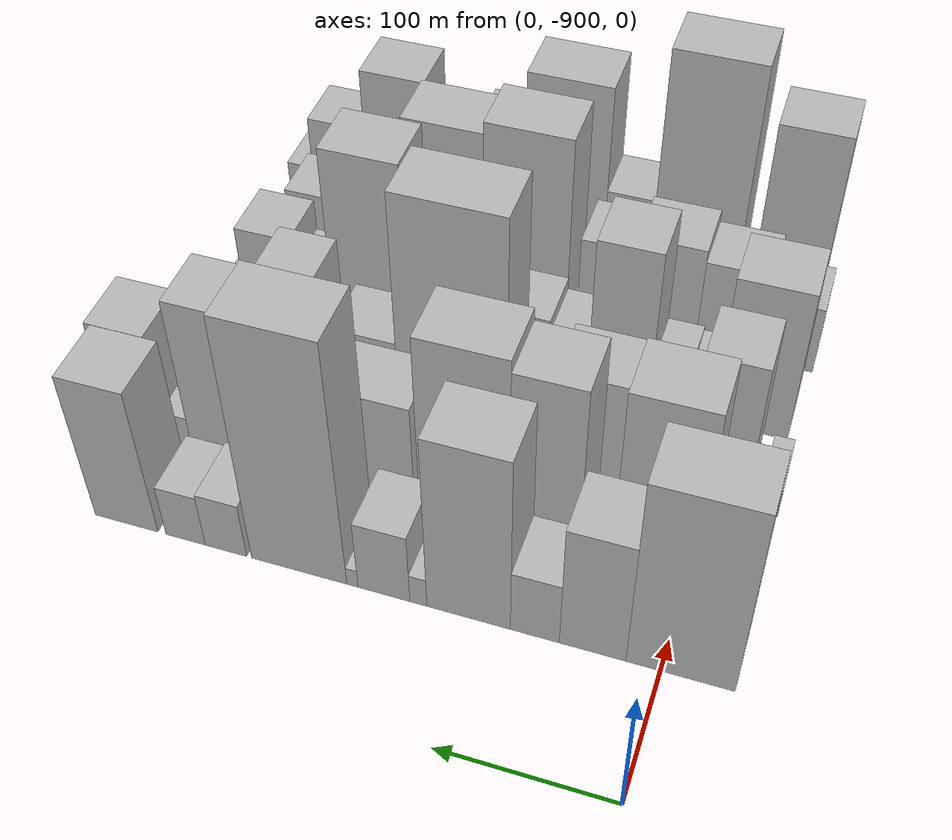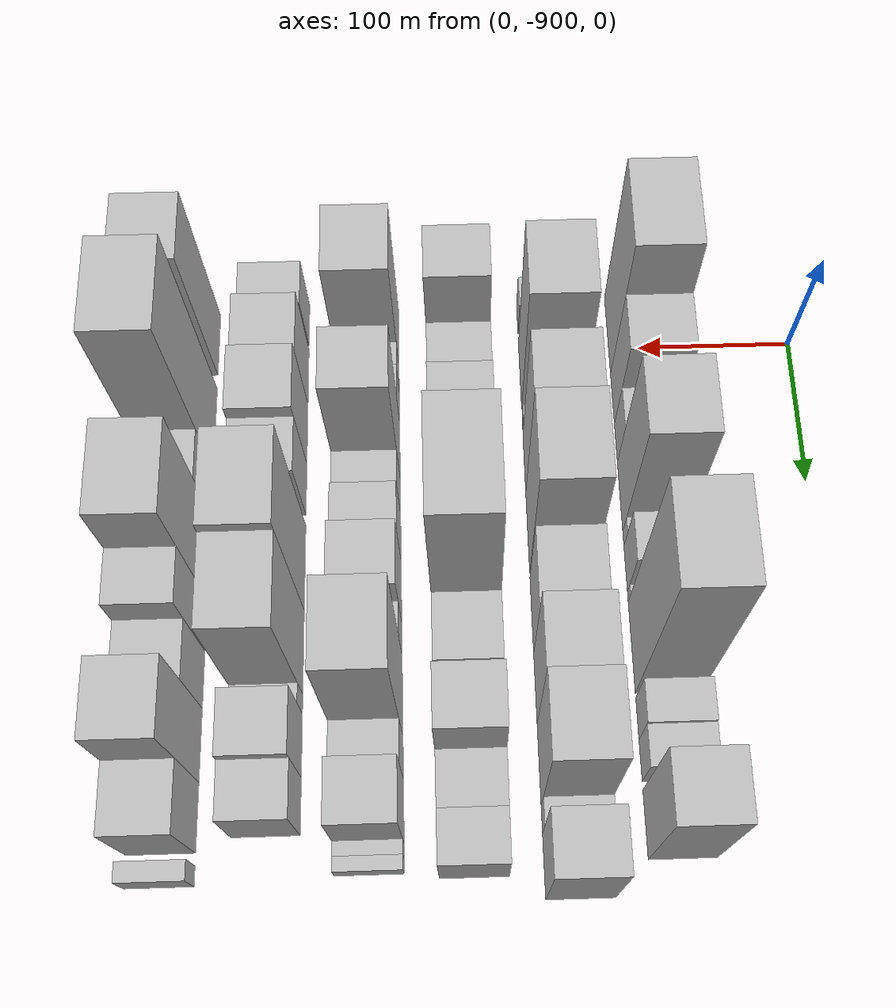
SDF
<sdf version="1.6">
 <world name="default">
  <model name="building_1">
   <static>1</static>
   <pose>100.0000 -910.4842 0 0.000000 0.000000 0.000000</pose>
   <link name="link">
    <pose>0 0 75.00 0 0 0</pose>
    <collision name="collision"><geometry><box><size>40.0000 59.0317 150.0000</size></box></geometry></collision>
    <visual name="visual">
     <cast_shadows>0</cast_shadows>
     <geometry><box><size>40.0000 59.0317 150.0000</size></box></geometry>
     <material>
      <script>
       <uri>model://HANNAS_wall/materials/scripts</uri>
       <uri>model://HANNAS_wall/materials/textures</uri>
       <name>vrc/HANNAS_wall</name>
      </script>
     </material>
    </visual>
   </link>
  </model>
  <model name="building_2">
   <static>1</static>
   <pose>100.0000 -862.5990 0 0.000000 0.000000 0.000000</pose>
   <link name="link">
    <pose>0 0 49.50 0 0 0</pose>
    <collision name="collision"><geometry><box><size>40.0000 36.7386 99.0000</size></box></geometry></collision>
    <visual name="visual">
     <cast_shadows>0</cast_shadows>
     <geometry><box><size>40.0000 36.7386 99.0000</size></box></geometry>
     <material>
      <script>
       <uri>model://HANNAS_wall/materials/scripts</uri>
       <uri>model://HANNAS_wall/materials/textures</uri>
       <name>vrc/HANNAS_wall</name>
      </script>
     </material>
    </visual>
   </link>
  </model>
  <model name="building_3">
   <static>1</static>
   <pose>100.0000 -830.4726 0 0.000000 0.000000 0.000000</pose>
   <link name="link">
    <pose>0 0 25.50 0 0 0</pose>
    <collision name="collision"><geometry><box><size>40.0000 27.5144 51.0000</size></box></geometry></collision>
    <visual name="visual">
     <cast_shadows>0</cast_shadows>
     <geometry><box><size>40.0000 27.5144 51.0000</size></box></geometry>
     <material>
      <script>
       <uri>model://HANNAS_wall/materials/scripts</uri>
       <uri>model://HANNAS_wall/materials/textures</uri>
       <name>vrc/HANNAS_wall</name>
      </script>
     </material>
    </visual>
   </link>
  </model>
  <model name="building_4">
   <static>1</static>
   <pose>100.0000 -792.7981 0 0.000000 0.000000 0.000000</pose>
   <link name="link">
    <pose>0 0 70.50 0 0 0</pose>
    <collision name="collision"><geometry><box><size>40.0000 47.8345 141.0000</size></box></geometry></collision>
    <visual name="visual">
     <cast_shadows>0</cast_shadows>
     <geometry><box><size>40.0000 47.8345 141.0000</size></box></geometry>
     <material>
      <script>
       <uri>model://HANNAS_wall/materials/scripts</uri>
       <uri>model://HANNAS_wall/materials/textures</uri>
       <name>vrc/HANNAS_wall</name>
      </script>
     </material>
    </visual>
   </link>
  </model>
  <model name="building_5">
   <static>1</static>
   <pose>100.0000 -763.9327 0 0.000000 0.000000 0.000000</pose>
   <link name="link">
    <pose>0 0 12.00 0 0 0</pose>
    <collision name="collision"><geometry><box><size>40.0000 9.8963 24.0000</size></box></geometry></collision>
    <visual name="visual">
     <cast_shadows>0</cast_shadows>
     <geometry><box><size>40.0000 9.8963 24.0000</size></box></geometry>
     <material>
      <script>
       <uri>model://HANNAS_wall/materials/scripts</uri>
       <uri>model://HANNAS_wall/materials/textures</uri>
       <name>vrc/HANNAS_wall</name>
      </script>
     </material>
    </visual>
   </link>
  </model>
  <model name="building_6">
   <static>1</static>
   <pose>100.0000 -743.7237 0 0.000000 0.000000 0.000000</pose>
   <link name="link">
    <pose>0 0 28.50 0 0 0</pose>
    <collision name="collision"><geometry><box><size>40.0000 30.5218 57.0000</size></box></geometry></collision>
    <visual name="visual">
     <cast_shadows>0</cast_shadows>
     <geometry><box><size>40.0000 30.5218 57.0000</size></box></geometry>
     <material>
      <script>
       <uri>model://HANNAS_wall/materials/scripts</uri>
       <uri>model://HANNAS_wall/materials/textures</uri>
       <name>vrc/HANNAS_wall</name>
      </script>
     </material>
    </visual>
   </link>
  </model>
  <model name="building_7">
   <static>1</static>
   <pose>100.0000 -725.1394 0 0.000000 0.000000 0.000000</pose>
   <link name="link">
    <pose>0 0 7.50 0 0 0</pose>
    <collision name="collision"><geometry><box><size>40.0000 6.6468 15.0000</size></box></geometry></collision>
    <visual name="visual">
     <cast_shadows>0</cast_shadows>
     <geometry><box><size>40.0000 6.6468 15.0000</size></box></geometry>
     <material>
      <script>
       <uri>model://HANNAS_wall/materials/scripts</uri>
       <uri>model://HANNAS_wall/materials/textures</uri>
       <name>vrc/HANNAS_wall</name>
      </script>
     </material>
    </visual>
   </link>
  </model>
  <model name="building_8">
   <static>1</static>
   <pose>100.0000 -693.0077 0 0.000000 0.000000 0.000000</pose>
   <link name="link">
    <pose>0 0 96.00 0 0 0</pose>
    <collision name="collision"><geometry><box><size>40.0000 57.6166 192.0000</size></box></geometry></collision>
    <visual name="visual">
     <cast_shadows>0</cast_shadows>
     <geometry><box><size>40.0000 57.6166 192.0000</size></box></geometry>
     <material>
      <script>
       <uri>model://HANNAS_wall/materials/scripts</uri>
       <uri>model://HANNAS_wall/materials/textures</uri>
       <name>vrc/HANNAS_wall</name>
      </script>
     </material>
    </visual>
   </link>
  </model>
  <model name="building_9">
   <static>1</static>
   <pose>100.0000 -648.4528 0 0.000000 0.000000 0.000000</pose>
   <link name="link">
    <pose>0 0 22.50 0 0 0</pose>
    <collision name="collision"><geometry><box><size>40.0000 25.4932 45.0000</size></box></geometry></collision>
    <visual name="visual">
     <cast_shadows>0</cast_shadows>
     <geometry><box><size>40.0000 25.4932 45.0000</size></box></geometry>
     <material>
      <script>
       <uri>model://HANNAS_wall/materials/scripts</uri>
       <uri>model://HANNAS_wall/materials/textures</uri>
       <name>vrc/HANNAS_wall</name>
      </script>
     </material>
    </visual>
   </link>
  </model>
  <model name="building_10">
   <static>1</static>
   <pose>100.0000 -623.3817 0 0.000000 0.000000 0.000000</pose>
   <link name="link">
    <pose>0 0 21.00 0 0 0</pose>
    <collision name="collision"><geometry><box><size>40.0000 24.6492 42.0000</size></box></geometry></collision>
    <visual name="visual">
     <cast_shadows>0</cast_shadows>
     <geometry><box><size>40.0000 24.6492 42.0000</size></box></geometry>
     <material>
      <script>
       <uri>model://HANNAS_wall/materials/scripts</uri>
       <uri>model://HANNAS_wall/materials/textures</uri>
       <name>vrc/HANNAS_wall</name>
      </script>
     </material>
    </visual>
   </link>
  </model>
  <model name="building_11">
   <static>1</static>
   <pose>100.0000 -586.1193 0 0.000000 0.000000 0.000000</pose>
   <link name="link">
    <pose>0 0 58.50 0 0 0</pose>
    <collision name="collision"><geometry><box><size>40.0000 39.8756 117.0000</size></box></geometry></collision>
    <visual name="visual">
     <cast_shadows>0</cast_shadows>
     <geometry><box><size>40.0000 39.8756 117.0000</size></box></geometry>
     <material>
      <script>
       <uri>model://HANNAS_wall/materials/scripts</uri>
       <uri>model://HANNAS_wall/materials/textures</uri>
       <name>vrc/HANNAS_wall</name>
      </script>
     </material>
    </visual>
   </link>
  </model>
  <model name="building_56">
   <static>1</static>
   <pose>160.0000 -924.4124 0 0.000000 0.000000 0.000000</pose>
   <link name="link">
    <pose>0 0 18.00 0 0 0</pose>
    <collision name="collision"><geometry><box><size>40.0000 21.1751 36.0000</size></box></geometry></collision>
    <visual name="visual">
     <cast_shadows>0</cast_shadows>
     <geometry><box><size>40.0000 21.1751 36.0000</size></box></geometry>
     <material>
      <script>
       <uri>model://HANNAS_wall/materials/scripts</uri>
       <uri>model://HANNAS_wall/materials/textures</uri>
       <name>vrc/HANNAS_wall</name>
      </script>
     </material>
    </visual>
   </link>
  </model>
  <model name="building_57">
   <static>1</static>
   <pose>160.0000 -881.5369 0 0.000000 0.000000 0.000000</pose>
   <link name="link">
    <pose>0 0 70.50 0 0 0</pose>
    <collision name="collision"><geometry><box><size>40.0000 48.5760 141.0000</size></box></geometry></collision>
    <visual name="visual">
     <cast_shadows>0</cast_shadows>
     <geometry><box><size>40.0000 48.5760 141.0000</size></box></geometry>
     <material>
      <script>
       <uri>model://HANNAS_wall/materials/scripts</uri>
       <uri>model://HANNAS_wall/materials/textures</uri>
       <name>vrc/HANNAS_wall</name>
      </script>
     </material>
    </visual>
   </link>
  </model>
  <model name="building_58">
   <static>1</static>
   <pose>160.0000 -846.8091 0 0.000000 0.000000 0.000000</pose>
   <link name="link">
    <pose>0 0 9.00 0 0 0</pose>
    <collision name="collision"><geometry><box><size>40.0000 8.8795 18.0000</size></box></geometry></collision>
    <visual name="visual">
     <cast_shadows>0</cast_shadows>
     <geometry><box><size>40.0000 8.8795 18.0000</size></box></geometry>
     <material>
      <script>
       <uri>model://HANNAS_wall/materials/scripts</uri>
       <uri>model://HANNAS_wall/materials/textures</uri>
       <name>vrc/HANNAS_wall</name>
      </script>
     </material>
    </visual>
   </link>
  </model>
  <model name="building_59">
   <static>1</static>
   <pose>160.0000 -817.6788 0 0.000000 0.000000 0.000000</pose>
   <link name="link">
    <pose>0 0 67.50 0 0 0</pose>
    <collision name="collision"><geometry><box><size>40.0000 41.3811 135.0000</size></box></geometry></collision>
    <visual name="visual">
     <cast_shadows>0</cast_shadows>
     <geometry><box><size>40.0000 41.3811 135.0000</size></box></geometry>
     <material>
      <script>
       <uri>model://HANNAS_wall/materials/scripts</uri>
       <uri>model://HANNAS_wall/materials/textures</uri>
       <name>vrc/HANNAS_wall</name>
      </script>
     </material>
    </visual>
   </link>
  </model>
  <model name="building_60">
   <static>1</static>
   <pose>160.0000 -769.9817 0 0.000000 0.000000 0.000000</pose>
   <link name="link">
    <pose>0 0 72.00 0 0 0</pose>
    <collision name="collision"><geometry><box><size>40.0000 54.0131 144.0000</size></box></geometry></collision>
    <visual name="visual">
     <cast_shadows>0</cast_shadows>
     <geometry><box><size>40.0000 54.0131 144.0000</size></box></geometry>
     <material>
      <script>
       <uri>model://HANNAS_wall/materials/scripts</uri>
       <uri>model://HANNAS_wall/materials/textures</uri>
       <name>vrc/HANNAS_wall</name>
      </script>
     </material>
    </visual>
   </link>
  </model>
  <model name="building_61">
   <static>1</static>
   <pose>160.0000 -715.3085 0 0.000000 0.000000 0.000000</pose>
   <link name="link">
    <pose>0 0 43.50 0 0 0</pose>
    <collision name="collision"><geometry><box><size>40.0000 49.3332 87.0000</size></box></geometry></collision>
    <visual name="visual">
     <cast_shadows>0</cast_shadows>
     <geometry><box><size>40.0000 49.3332 87.0000</size></box></geometry>
     <material>
      <script>
       <uri>model://HANNAS_wall/materials/scripts</uri>
       <uri>model://HANNAS_wall/materials/textures</uri>
       <name>vrc/HANNAS_wall</name>
      </script>
     </material>
    </visual>
   </link>
  </model>
  <model name="building_62">
   <static>1</static>
   <pose>160.0000 -668.8599 0 0.000000 0.000000 0.000000</pose>
   <link name="link">
    <pose>0 0 58.50 0 0 0</pose>
    <collision name="collision"><geometry><box><size>40.0000 43.5639 117.0000</size></box></geometry></collision>
    <visual name="visual">
     <cast_shadows>0</cast_shadows>
     <geometry><box><size>40.0000 43.5639 117.0000</size></box></geometry>
     <material>
      <script>
       <uri>model://HANNAS_wall/materials/scripts</uri>
       <uri>model://HANNAS_wall/materials/textures</uri>
       <name>vrc/HANNAS_wall</name>
      </script>
     </material>
    </visual>
   </link>
  </model>
  <model name="building_63">
   <static>1</static>
   <pose>160.0000 -622.9243 0 0.000000 0.000000 0.000000</pose>
   <link name="link">
    <pose>0 0 63.00 0 0 0</pose>
    <collision name="collision"><geometry><box><size>40.0000 48.3073 126.0000</size></box></geometry></collision>
    <visual name="visual">
     <cast_shadows>0</cast_shadows>
     <geometry><box><size>40.0000 48.3073 126.0000</size></box></geometry>
     <material>
      <script>
       <uri>model://HANNAS_wall/materials/scripts</uri>
       <uri>model://HANNAS_wall/materials/textures</uri>
       <name>vrc/HANNAS_wall</name>
      </script>
     </material>
    </visual>
   </link>
  </model>
  <model name="building_64">
   <static>1</static>
   <pose>160.0000 -590.5677 0 0.000000 0.000000 0.000000</pose>
   <link name="link">
    <pose>0 0 15.00 0 0 0</pose>
    <collision name="collision"><geometry><box><size>40.0000 16.4059 30.0000</size></box></geometry></collision>
    <visual name="visual">
     <cast_shadows>0</cast_shadows>
     <geometry><box><size>40.0000 16.4059 30.0000</size></box></geometry>
     <material>
      <script>
       <uri>model://HANNAS_wall/materials/scripts</uri>
       <uri>model://HANNAS_wall/materials/textures</uri>
       <name>vrc/HANNAS_wall</name>
      </script>
     </material>
    </visual>
   </link>
  </model>
  <model name="building_65">
   <static>1</static>
   <pose>160.0000 -564.0312 0 0.000000 0.000000 0.000000</pose>
   <link name="link">
    <pose>0 0 46.50 0 0 0</pose>
    <collision name="collision"><geometry><box><size>40.0000 36.6671 93.0000</size></box></geometry></collision>
    <visual name="visual">
     <cast_shadows>0</cast_shadows>
     <geometry><box><size>40.0000 36.6671 93.0000</size></box></geometry>
     <material>
      <script>
       <uri>model://HANNAS_wall/materials/scripts</uri>
       <uri>model://HANNAS_wall/materials/textures</uri>
       <name>vrc/HANNAS_wall</name>
      </script>
     </material>
    </visual>
   </link>
  </model>
  <model name="building_104">
   <static>1</static>
   <pose>220.0000 -934.0012 0 0.000000 0.000000 0.000000</pose>
   <link name="link">
    <pose>0 0 12.00 0 0 0</pose>
    <collision name="collision"><geometry><box><size>40.0000 11.9976 24.0000</size></box></geometry></collision>
    <visual name="visual">
     <cast_shadows>0</cast_shadows>
     <geometry><box><size>40.0000 11.9976 24.0000</size></box></geometry>
     <material>
      <script>
       <uri>model://HANNAS_wall/materials/scripts</uri>
       <uri>model://HANNAS_wall/materials/textures</uri>
       <name>vrc/HANNAS_wall</name>
      </script>
     </material>
    </visual>
   </link>
  </model>
  <model name="building_105">
   <static>1</static>
   <pose>220.0000 -903.0771 0 0.000000 0.000000 0.000000</pose>
   <link name="link">
    <pose>0 0 58.50 0 0 0</pose>
    <collision name="collision"><geometry><box><size>40.0000 35.8506 117.0000</size></box></geometry></collision>
    <visual name="visual">
     <cast_shadows>0</cast_shadows>
     <geometry><box><size>40.0000 35.8506 117.0000</size></box></geometry>
     <material>
      <script>
       <uri>model://HANNAS_wall/materials/scripts</uri>
       <uri>model://HANNAS_wall/materials/textures</uri>
       <name>vrc/HANNAS_wall</name>
      </script>
     </material>
    </visual>
   </link>
  </model>
  <model name="building_106">
   <static>1</static>
   <pose>220.0000 -868.0719 0 0.000000 0.000000 0.000000</pose>
   <link name="link">
    <pose>0 0 33.00 0 0 0</pose>
    <collision name="collision"><geometry><box><size>40.0000 34.1599 66.0000</size></box></geometry></collision>
    <visual name="visual">
     <cast_shadows>0</cast_shadows>
     <geometry><box><size>40.0000 34.1599 66.0000</size></box></geometry>
     <material>
      <script>
       <uri>model://HANNAS_wall/materials/scripts</uri>
       <uri>model://HANNAS_wall/materials/textures</uri>
       <name>vrc/HANNAS_wall</name>
      </script>
     </material>
    </visual>
   </link>
  </model>
  <model name="building_107">
   <static>1</static>
   <pose>220.0000 -828.1223 0 0.000000 0.000000 0.000000</pose>
   <link name="link">
    <pose>0 0 39.00 0 0 0</pose>
    <collision name="collision"><geometry><box><size>40.0000 45.7391 78.0000</size></box></geometry></collision>
    <visual name="visual">
     <cast_shadows>0</cast_shadows>
     <geometry><box><size>40.0000 45.7391 78.0000</size></box></geometry>
     <material>
      <script>
       <uri>model://HANNAS_wall/materials/scripts</uri>
       <uri>model://HANNAS_wall/materials/textures</uri>
       <name>vrc/HANNAS_wall</name>
      </script>
     </material>
    </visual>
   </link>
  </model>
  <model name="building_108">
   <static>1</static>
   <pose>220.0000 -790.9094 0 0.000000 0.000000 0.000000</pose>
   <link name="link">
    <pose>0 0 25.50 0 0 0</pose>
    <collision name="collision"><geometry><box><size>40.0000 28.6867 51.0000</size></box></geometry></collision>
    <visual name="visual">
     <cast_shadows>0</cast_shadows>
     <geometry><box><size>40.0000 28.6867 51.0000</size></box></geometry>
     <material>
      <script>
       <uri>model://HANNAS_wall/materials/scripts</uri>
       <uri>model://HANNAS_wall/materials/textures</uri>
       <name>vrc/HANNAS_wall</name>
      </script>
     </material>
    </visual>
   </link>
  </model>
  <model name="building_109">
   <static>1</static>
   <pose>220.0000 -742.5835 0 0.000000 0.000000 0.000000</pose>
   <link name="link">
    <pose>0 0 91.50 0 0 0</pose>
    <collision name="collision"><geometry><box><size>40.0000 67.9651 183.0000</size></box></geometry></collision>
    <visual name="visual">
     <cast_shadows>0</cast_shadows>
     <geometry><box><size>40.0000 67.9651 183.0000</size></box></geometry>
     <material>
      <script>
       <uri>model://HANNAS_wall/materials/scripts</uri>
       <uri>model://HANNAS_wall/materials/textures</uri>
       <name>vrc/HANNAS_wall</name>
      </script>
     </material>
    </visual>
   </link>
  </model>
  <model name="building_110">
   <static>1</static>
   <pose>220.0000 -688.6615 0 0.000000 0.000000 0.000000</pose>
   <link name="link">
    <pose>0 0 34.50 0 0 0</pose>
    <collision name="collision"><geometry><box><size>40.0000 39.8789 69.0000</size></box></geometry></collision>
    <visual name="visual">
     <cast_shadows>0</cast_shadows>
     <geometry><box><size>40.0000 39.8789 69.0000</size></box></geometry>
     <material>
      <script>
       <uri>model://HANNAS_wall/materials/scripts</uri>
       <uri>model://HANNAS_wall/materials/textures</uri>
       <name>vrc/HANNAS_wall</name>
      </script>
     </material>
    </visual>
   </link>
  </model>
  <model name="building_111">
   <static>1</static>
   <pose>220.0000 -640.5286 0 0.000000 0.000000 0.000000</pose>
   <link name="link">
    <pose>0 0 51.00 0 0 0</pose>
    <collision name="collision"><geometry><box><size>40.0000 36.3869 102.0000</size></box></geometry></collision>
    <visual name="visual">
     <cast_shadows>0</cast_shadows>
     <geometry><box><size>40.0000 36.3869 102.0000</size></box></geometry>
     <material>
      <script>
       <uri>model://HANNAS_wall/materials/scripts</uri>
       <uri>model://HANNAS_wall/materials/textures</uri>
       <name>vrc/HANNAS_wall</name>
      </script>
     </material>
    </visual>
   </link>
  </model>
  <model name="building_112">
   <static>1</static>
   <pose>220.0000 -606.2519 0 0.000000 0.000000 0.000000</pose>
   <link name="link">
    <pose>0 0 27.00 0 0 0</pose>
    <collision name="collision"><geometry><box><size>40.0000 32.1667 54.0000</size></box></geometry></collision>
    <visual name="visual">
     <cast_shadows>0</cast_shadows>
     <geometry><box><size>40.0000 32.1667 54.0000</size></box></geometry>
     <material>
      <script>
       <uri>model://HANNAS_wall/materials/scripts</uri>
       <uri>model://HANNAS_wall/materials/textures</uri>
       <name>vrc/HANNAS_wall</name>
      </script>
     </material>
    </visual>
   </link>
  </model>
  <model name="building_113">
   <static>1</static>
   <pose>220.0000 -574.7289 0 0.000000 0.000000 0.000000</pose>
   <link name="link">
    <pose>0 0 27.00 0 0 0</pose>
    <collision name="collision"><geometry><box><size>40.0000 30.8791 54.0000</size></box></geometry></collision>
    <visual name="visual">
     <cast_shadows>0</cast_shadows>
     <geometry><box><size>40.0000 30.8791 54.0000</size></box></geometry>
     <material>
      <script>
       <uri>model://HANNAS_wall/materials/scripts</uri>
       <uri>model://HANNAS_wall/materials/textures</uri>
       <name>vrc/HANNAS_wall</name>
      </script>
     </material>
    </visual>
   </link>
  </model>
  <model name="building_158">
   <static>1</static>
   <pose>280.0000 -912.3021 0 0.000000 0.000000 0.000000</pose>
   <link name="link">
    <pose>0 0 60.00 0 0 0</pose>
    <collision name="collision"><geometry><box><size>40.0000 45.3957 120.0000</size></box></geometry></collision>
    <visual name="visual">
     <cast_shadows>0</cast_shadows>
     <geometry><box><size>40.0000 45.3957 120.0000</size></box></geometry>
     <material>
      <script>
       <uri>model://HANNAS_wall/materials/scripts</uri>
       <uri>model://HANNAS_wall/materials/textures</uri>
       <name>vrc/HANNAS_wall</name>
      </script>
     </material>
    </visual>
   </link>
  </model>
  <model name="building_159">
   <static>1</static>
   <pose>280.0000 -880.6004 0 0.000000 0.000000 0.000000</pose>
   <link name="link">
    <pose>0 0 18.00 0 0 0</pose>
    <collision name="collision"><geometry><box><size>40.0000 18.0078 36.0000</size></box></geometry></collision>
    <visual name="visual">
     <cast_shadows>0</cast_shadows>
     <geometry><box><size>40.0000 18.0078 36.0000</size></box></geometry>
     <material>
      <script>
       <uri>model://HANNAS_wall/materials/scripts</uri>
       <uri>model://HANNAS_wall/materials/textures</uri>
       <name>vrc/HANNAS_wall</name>
      </script>
     </material>
    </visual>
   </link>
  </model>
  <model name="building_160">
   <static>1</static>
   <pose>280.0000 -860.2462 0 0.000000 0.000000 0.000000</pose>
   <link name="link">
    <pose>0 0 19.50 0 0 0</pose>
    <collision name="collision"><geometry><box><size>40.0000 22.7005 39.0000</size></box></geometry></collision>
    <visual name="visual">
     <cast_shadows>0</cast_shadows>
     <geometry><box><size>40.0000 22.7005 39.0000</size></box></geometry>
     <material>
      <script>
       <uri>model://HANNAS_wall/materials/scripts</uri>
       <uri>model://HANNAS_wall/materials/textures</uri>
       <name>vrc/HANNAS_wall</name>
      </script>
     </material>
    </visual>
   </link>
  </model>
  <model name="building_161">
   <static>1</static>
   <pose>280.0000 -829.1901 0 0.000000 0.000000 0.000000</pose>
   <link name="link">
    <pose>0 0 63.00 0 0 0</pose>
    <collision name="collision"><geometry><box><size>40.0000 39.4118 126.0000</size></box></geometry></collision>
    <visual name="visual">
     <cast_shadows>0</cast_shadows>
     <geometry><box><size>40.0000 39.4118 126.0000</size></box></geometry>
     <material>
      <script>
       <uri>model://HANNAS_wall/materials/scripts</uri>
       <uri>model://HANNAS_wall/materials/textures</uri>
       <name>vrc/HANNAS_wall</name>
      </script>
     </material>
    </visual>
   </link>
  </model>
  <model name="building_162">
   <static>1</static>
   <pose>280.0000 -797.0295 0 0.000000 0.000000 0.000000</pose>
   <link name="link">
    <pose>0 0 22.50 0 0 0</pose>
    <collision name="collision"><geometry><box><size>40.0000 24.9092 45.0000</size></box></geometry></collision>
    <visual name="visual">
     <cast_shadows>0</cast_shadows>
     <geometry><box><size>40.0000 24.9092 45.0000</size></box></geometry>
     <material>
      <script>
       <uri>model://HANNAS_wall/materials/scripts</uri>
       <uri>model://HANNAS_wall/materials/textures</uri>
       <name>vrc/HANNAS_wall</name>
      </script>
     </material>
    </visual>
   </link>
  </model>
  <model name="building_163">
   <static>1</static>
   <pose>280.0000 -768.7694 0 0.000000 0.000000 0.000000</pose>
   <link name="link">
    <pose>0 0 27.00 0 0 0</pose>
    <collision name="collision"><geometry><box><size>40.0000 31.6111 54.0000</size></box></geometry></collision>
    <visual name="visual">
     <cast_shadows>0</cast_shadows>
     <geometry><box><size>40.0000 31.6111 54.0000</size></box></geometry>
     <material>
      <script>
       <uri>model://HANNAS_wall/materials/scripts</uri>
       <uri>model://HANNAS_wall/materials/textures</uri>
       <name>vrc/HANNAS_wall</name>
      </script>
     </material>
    </visual>
   </link>
  </model>
  <model name="building_164">
   <static>1</static>
   <pose>280.0000 -733.0330 0 0.000000 0.000000 0.000000</pose>
   <link name="link">
    <pose>0 0 36.00 0 0 0</pose>
    <collision name="collision"><geometry><box><size>40.0000 39.8617 72.0000</size></box></geometry></collision>
    <visual name="visual">
     <cast_shadows>0</cast_shadows>
     <geometry><box><size>40.0000 39.8617 72.0000</size></box></geometry>
     <material>
      <script>
       <uri>model://HANNAS_wall/materials/scripts</uri>
       <uri>model://HANNAS_wall/materials/textures</uri>
       <name>vrc/HANNAS_wall</name>
      </script>
     </material>
    </visual>
   </link>
  </model>
  <model name="building_165">
   <static>1</static>
   <pose>280.0000 -702.3368 0 0.000000 0.000000 0.000000</pose>
   <link name="link">
    <pose>0 0 21.00 0 0 0</pose>
    <collision name="collision"><geometry><box><size>40.0000 21.5306 42.0000</size></box></geometry></collision>
    <visual name="visual">
     <cast_shadows>0</cast_shadows>
     <geometry><box><size>40.0000 21.5306 42.0000</size></box></geometry>
     <material>
      <script>
       <uri>model://HANNAS_wall/materials/scripts</uri>
       <uri>model://HANNAS_wall/materials/textures</uri>
       <name>vrc/HANNAS_wall</name>
      </script>
     </material>
    </visual>
   </link>
  </model>
  <model name="building_166">
   <static>1</static>
   <pose>280.0000 -666.7337 0 0.000000 0.000000 0.000000</pose>
   <link name="link">
    <pose>0 0 75.00 0 0 0</pose>
    <collision name="collision"><geometry><box><size>40.0000 49.6757 150.0000</size></box></geometry></collision>
    <visual name="visual">
     <cast_shadows>0</cast_shadows>
     <geometry><box><size>40.0000 49.6757 150.0000</size></box></geometry>
     <material>
      <script>
       <uri>model://HANNAS_wall/materials/scripts</uri>
       <uri>model://HANNAS_wall/materials/textures</uri>
       <name>vrc/HANNAS_wall</name>
      </script>
     </material>
    </visual>
   </link>
  </model>
  <model name="building_167">
   <static>1</static>
   <pose>280.0000 -629.1393 0 0.000000 0.000000 0.000000</pose>
   <link name="link">
    <pose>0 0 24.00 0 0 0</pose>
    <collision name="collision"><geometry><box><size>40.0000 25.5131 48.0000</size></box></geometry></collision>
    <visual name="visual">
     <cast_shadows>0</cast_shadows>
     <geometry><box><size>40.0000 25.5131 48.0000</size></box></geometry>
     <material>
      <script>
       <uri>model://HANNAS_wall/materials/scripts</uri>
       <uri>model://HANNAS_wall/materials/textures</uri>
       <name>vrc/HANNAS_wall</name>
      </script>
     </material>
    </visual>
   </link>
  </model>
  <model name="building_168">
   <static>1</static>
   <pose>280.0000 -598.0546 0 0.000000 0.000000 0.000000</pose>
   <link name="link">
    <pose>0 0 36.00 0 0 0</pose>
    <collision name="collision"><geometry><box><size>40.0000 36.6563 72.0000</size></box></geometry></collision>
    <visual name="visual">
     <cast_shadows>0</cast_shadows>
     <geometry><box><size>40.0000 36.6563 72.0000</size></box></geometry>
     <material>
      <script>
       <uri>model://HANNAS_wall/materials/scripts</uri>
       <uri>model://HANNAS_wall/materials/textures</uri>
       <name>vrc/HANNAS_wall</name>
      </script>
     </material>
    </visual>
   </link>
  </model>
  <model name="building_169">
   <static>1</static>
   <pose>280.0000 -575.4762 0 0.000000 0.000000 0.000000</pose>
   <link name="link">
    <pose>0 0 9.00 0 0 0</pose>
    <collision name="collision"><geometry><box><size>40.0000 8.5004 18.0000</size></box></geometry></collision>
    <visual name="visual">
     <cast_shadows>0</cast_shadows>
     <geometry><box><size>40.0000 8.5004 18.0000</size></box></geometry>
     <material>
      <script>
       <uri>model://HANNAS_wall/materials/scripts</uri>
       <uri>model://HANNAS_wall/materials/textures</uri>
       <name>vrc/HANNAS_wall</name>
      </script>
     </material>
    </visual>
   </link>
  </model>
  <model name="building_170">
   <static>1</static>
   <pose>280.0000 -566.8989 0 0.000000 0.000000 0.000000</pose>
   <link name="link">
    <pose>0 0 9.00 0 0 0</pose>
    <collision name="collision"><geometry><box><size>40.0000 8.6541 18.0000</size></box></geometry></collision>
    <visual name="visual">
     <cast_shadows>0</cast_shadows>
     <geometry><box><size>40.0000 8.6541 18.0000</size></box></geometry>
     <material>
      <script>
       <uri>model://HANNAS_wall/materials/scripts</uri>
       <uri>model://HANNAS_wall/materials/textures</uri>
       <name>vrc/HANNAS_wall</name>
      </script>
     </material>
    </visual>
   </link>
  </model>
  <model name="building_211">
   <static>1</static>
   <pose>340.0000 -924.3533 0 0.000000 0.000000 0.000000</pose>
   <link name="link">
    <pose>0 0 27.00 0 0 0</pose>
    <collision name="collision"><geometry><box><size>40.0000 31.2933 54.0000</size></box></geometry></collision>
    <visual name="visual">
     <cast_shadows>0</cast_shadows>
     <geometry><box><size>40.0000 31.2933 54.0000</size></box></geometry>
     <material>
      <script>
       <uri>model://HANNAS_wall/materials/scripts</uri>
       <uri>model://HANNAS_wall/materials/textures</uri>
       <name>vrc/HANNAS_wall</name>
      </script>
     </material>
    </visual>
   </link>
  </model>
  <model name="building_212">
   <static>1</static>
   <pose>340.0000 -885.1938 0 0.000000 0.000000 0.000000</pose>
   <link name="link">
    <pose>0 0 36.00 0 0 0</pose>
    <collision name="collision"><geometry><box><size>40.0000 41.0258 72.0000</size></box></geometry></collision>
    <visual name="visual">
     <cast_shadows>0</cast_shadows>
     <geometry><box><size>40.0000 41.0258 72.0000</size></box></geometry>
     <material>
      <script>
       <uri>model://HANNAS_wall/materials/scripts</uri>
       <uri>model://HANNAS_wall/materials/textures</uri>
       <name>vrc/HANNAS_wall</name>
      </script>
     </material>
    </visual>
   </link>
  </model>
  <model name="building_213">
   <static>1</static>
   <pose>340.0000 -843.2461 0 0.000000 0.000000 0.000000</pose>
   <link name="link">
    <pose>0 0 40.50 0 0 0</pose>
    <collision name="collision"><geometry><box><size>40.0000 42.8696 81.0000</size></box></geometry></collision>
    <visual name="visual">
     <cast_shadows>0</cast_shadows>
     <geometry><box><size>40.0000 42.8696 81.0000</size></box></geometry>
     <material>
      <script>
       <uri>model://HANNAS_wall/materials/scripts</uri>
       <uri>model://HANNAS_wall/materials/textures</uri>
       <name>vrc/HANNAS_wall</name>
      </script>
     </material>
    </visual>
   </link>
  </model>
  <model name="building_214">
   <static>1</static>
   <pose>340.0000 -804.0463 0 0.000000 0.000000 0.000000</pose>
   <link name="link">
    <pose>0 0 34.50 0 0 0</pose>
    <collision name="collision"><geometry><box><size>40.0000 35.5300 69.0000</size></box></geometry></collision>
    <visual name="visual">
     <cast_shadows>0</cast_shadows>
     <geometry><box><size>40.0000 35.5300 69.0000</size></box></geometry>
     <material>
      <script>
       <uri>model://HANNAS_wall/materials/scripts</uri>
       <uri>model://HANNAS_wall/materials/textures</uri>
       <name>vrc/HANNAS_wall</name>
      </script>
     </material>
    </visual>
   </link>
  </model>
  <model name="building_215">
   <static>1</static>
   <pose>340.0000 -751.0282 0 0.000000 0.000000 0.000000</pose>
   <link name="link">
    <pose>0 0 72.00 0 0 0</pose>
    <collision name="collision"><geometry><box><size>40.0000 56.5062 144.0000</size></box></geometry></collision>
    <visual name="visual">
     <cast_shadows>0</cast_shadows>
     <geometry><box><size>40.0000 56.5062 144.0000</size></box></geometry>
     <material>
      <script>
       <uri>model://HANNAS_wall/materials/scripts</uri>
       <uri>model://HANNAS_wall/materials/textures</uri>
       <name>vrc/HANNAS_wall</name>
      </script>
     </material>
    </visual>
   </link>
  </model>
  <model name="building_216">
   <static>1</static>
   <pose>340.0000 -696.2396 0 0.000000 0.000000 0.000000</pose>
   <link name="link">
    <pose>0 0 67.50 0 0 0</pose>
    <collision name="collision"><geometry><box><size>40.0000 53.0710 135.0000</size></box></geometry></collision>
    <visual name="visual">
     <cast_shadows>0</cast_shadows>
     <geometry><box><size>40.0000 53.0710 135.0000</size></box></geometry>
     <material>
      <script>
       <uri>model://HANNAS_wall/materials/scripts</uri>
       <uri>model://HANNAS_wall/materials/textures</uri>
       <name>vrc/HANNAS_wall</name>
      </script>
     </material>
    </visual>
   </link>
  </model>
  <model name="building_217">
   <static>1</static>
   <pose>340.0000 -663.7313 0 0.000000 0.000000 0.000000</pose>
   <link name="link">
    <pose>0 0 13.50 0 0 0</pose>
    <collision name="collision"><geometry><box><size>40.0000 11.9457 27.0000</size></box></geometry></collision>
    <visual name="visual">
     <cast_shadows>0</cast_shadows>
     <geometry><box><size>40.0000 11.9457 27.0000</size></box></geometry>
     <material>
      <script>
       <uri>model://HANNAS_wall/materials/scripts</uri>
       <uri>model://HANNAS_wall/materials/textures</uri>
       <name>vrc/HANNAS_wall</name>
      </script>
     </material>
    </visual>
   </link>
  </model>
  <model name="building_218">
   <static>1</static>
   <pose>340.0000 -638.6300 0 0.000000 0.000000 0.000000</pose>
   <link name="link">
    <pose>0 0 33.00 0 0 0</pose>
    <collision name="collision"><geometry><box><size>40.0000 38.2568 66.0000</size></box></geometry></collision>
    <visual name="visual">
     <cast_shadows>0</cast_shadows>
     <geometry><box><size>40.0000 38.2568 66.0000</size></box></geometry>
     <material>
      <script>
       <uri>model://HANNAS_wall/materials/scripts</uri>
       <uri>model://HANNAS_wall/materials/textures</uri>
       <name>vrc/HANNAS_wall</name>
      </script>
     </material>
    </visual>
   </link>
  </model>
  <model name="building_219">
   <static>1</static>
   <pose>340.0000 -602.7637 0 0.000000 0.000000 0.000000</pose>
   <link name="link">
    <pose>0 0 28.50 0 0 0</pose>
    <collision name="collision"><geometry><box><size>40.0000 33.4758 57.0000</size></box></geometry></collision>
    <visual name="visual">
     <cast_shadows>0</cast_shadows>
     <geometry><box><size>40.0000 33.4758 57.0000</size></box></geometry>
     <material>
      <script>
       <uri>model://HANNAS_wall/materials/scripts</uri>
       <uri>model://HANNAS_wall/materials/textures</uri>
       <name>vrc/HANNAS_wall</name>
      </script>
     </material>
    </visual>
   </link>
  </model>
  <model name="building_263">
   <static>1</static>
   <pose>400.0000 -911.1831 0 0.000000 0.000000 0.000000</pose>
   <link name="link">
    <pose>0 0 69.00 0 0 0</pose>
    <collision name="collision"><geometry><box><size>40.0000 45.6337 138.0000</size></box></geometry></collision>
    <visual name="visual">
     <cast_shadows>0</cast_shadows>
     <geometry><box><size>40.0000 45.6337 138.0000</size></box></geometry>
     <material>
      <script>
       <uri>model://HANNAS_wall/materials/scripts</uri>
       <uri>model://HANNAS_wall/materials/textures</uri>
       <name>vrc/HANNAS_wall</name>
      </script>
     </material>
    </visual>
   </link>
  </model>
  <model name="building_264">
   <static>1</static>
   <pose>400.0000 -849.0502 0 0.000000 0.000000 0.000000</pose>
   <link name="link">
    <pose>0 0 88.50 0 0 0</pose>
    <collision name="collision"><geometry><box><size>40.0000 58.6320 177.0000</size></box></geometry></collision>
    <visual name="visual">
     <cast_shadows>0</cast_shadows>
     <geometry><box><size>40.0000 58.6320 177.0000</size></box></geometry>
     <material>
      <script>
       <uri>model://HANNAS_wall/materials/scripts</uri>
       <uri>model://HANNAS_wall/materials/textures</uri>
       <name>vrc/HANNAS_wall</name>
      </script>
     </material>
    </visual>
   </link>
  </model>
  <model name="building_265">
   <static>1</static>
   <pose>400.0000 -803.6387 0 0.000000 0.000000 0.000000</pose>
   <link name="link">
    <pose>0 0 30.00 0 0 0</pose>
    <collision name="collision"><geometry><box><size>40.0000 32.1910 60.0000</size></box></geometry></collision>
    <visual name="visual">
     <cast_shadows>0</cast_shadows>
     <geometry><box><size>40.0000 32.1910 60.0000</size></box></geometry>
     <material>
      <script>
       <uri>model://HANNAS_wall/materials/scripts</uri>
       <uri>model://HANNAS_wall/materials/textures</uri>
       <name>vrc/HANNAS_wall</name>
      </script>
     </material>
    </visual>
   </link>
  </model>
  <model name="building_266">
   <static>1</static>
   <pose>400.0000 -759.5887 0 0.000000 0.000000 0.000000</pose>
   <link name="link">
    <pose>0 0 70.50 0 0 0</pose>
    <collision name="collision"><geometry><box><size>40.0000 55.9092 141.0000</size></box></geometry></collision>
    <visual name="visual">
     <cast_shadows>0</cast_shadows>
     <geometry><box><size>40.0000 55.9092 141.0000</size></box></geometry>
     <material>
      <script>
       <uri>model://HANNAS_wall/materials/scripts</uri>
       <uri>model://HANNAS_wall/materials/textures</uri>
       <name>vrc/HANNAS_wall</name>
      </script>
     </material>
    </visual>
   </link>
  </model>
  <model name="building_267">
   <static>1</static>
   <pose>400.0000 -715.0609 0 0.000000 0.000000 0.000000</pose>
   <link name="link">
    <pose>0 0 46.50 0 0 0</pose>
    <collision name="collision"><geometry><box><size>40.0000 33.1465 93.0000</size></box></geometry></collision>
    <visual name="visual">
     <cast_shadows>0</cast_shadows>
     <geometry><box><size>40.0000 33.1465 93.0000</size></box></geometry>
     <material>
      <script>
       <uri>model://HANNAS_wall/materials/scripts</uri>
       <uri>model://HANNAS_wall/materials/textures</uri>
       <name>vrc/HANNAS_wall</name>
      </script>
     </material>
    </visual>
   </link>
  </model>
  <model name="building_268">
   <static>1</static>
   <pose>400.0000 -680.6829 0 0.000000 0.000000 0.000000</pose>
   <link name="link">
    <pose>0 0 33.00 0 0 0</pose>
    <collision name="collision"><geometry><box><size>40.0000 35.6094 66.0000</size></box></geometry></collision>
    <visual name="visual">
     <cast_shadows>0</cast_shadows>
     <geometry><box><size>40.0000 35.6094 66.0000</size></box></geometry>
     <material>
      <script>
       <uri>model://HANNAS_wall/materials/scripts</uri>
       <uri>model://HANNAS_wall/materials/textures</uri>
       <name>vrc/HANNAS_wall</name>
      </script>
     </material>
    </visual>
   </link>
  </model>
  <model name="building_269">
   <static>1</static>
   <pose>400.0000 -640.7019 0 0.000000 0.000000 0.000000</pose>
   <link name="link">
    <pose>0 0 58.50 0 0 0</pose>
    <collision name="collision"><geometry><box><size>40.0000 44.3527 117.0000</size></box></geometry></collision>
    <visual name="visual">
     <cast_shadows>0</cast_shadows>
     <geometry><box><size>40.0000 44.3527 117.0000</size></box></geometry>
     <material>
      <script>
       <uri>model://HANNAS_wall/materials/scripts</uri>
       <uri>model://HANNAS_wall/materials/textures</uri>
       <name>vrc/HANNAS_wall</name>
      </script>
     </material>
    </visual>
   </link>
  </model>
  <model name="building_270">
   <static>1</static>
   <pose>400.0000 -598.2063 0 0.000000 0.000000 0.000000</pose>
   <link name="link">
    <pose>0 0 34.50 0 0 0</pose>
    <collision name="collision"><geometry><box><size>40.0000 40.6383 69.0000</size></box></geometry></collision>
    <visual name="visual">
     <cast_shadows>0</cast_shadows>
     <geometry><box><size>40.0000 40.6383 69.0000</size></box></geometry>
     <material>
      <script>
       <uri>model://HANNAS_wall/materials/scripts</uri>
       <uri>model://HANNAS_wall/materials/textures</uri>
       <name>vrc/HANNAS_wall</name>
      </script>
     </material>
    </visual>
   </link>
  </model>
  <model name="building_271">
   <static>1</static>
   <pose>400.0000 -565.0134 0 0.000000 0.000000 0.000000</pose>
   <link name="link">
    <pose>0 0 13.50 0 0 0</pose>
    <collision name="collision"><geometry><box><size>40.0000 11.7476 27.0000</size></box></geometry></collision>
    <visual name="visual">
     <cast_shadows>0</cast_shadows>
     <geometry><box><size>40.0000 11.7476 27.0000</size></box></geometry>
     <material>
      <script>
       <uri>model://HANNAS_wall/materials/scripts</uri>
       <uri>model://HANNAS_wall/materials/textures</uri>
       <name>vrc/HANNAS_wall</name>
      </script>
     </material>
    </visual>
   </link>
  </model>
 </world>
</sdf>
